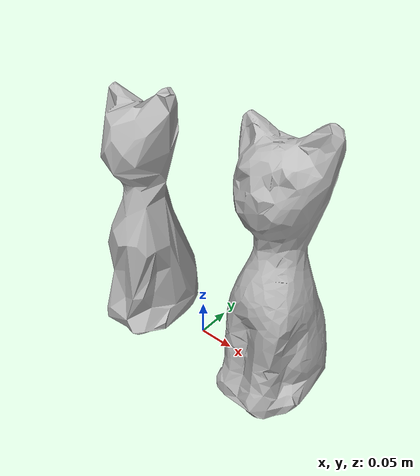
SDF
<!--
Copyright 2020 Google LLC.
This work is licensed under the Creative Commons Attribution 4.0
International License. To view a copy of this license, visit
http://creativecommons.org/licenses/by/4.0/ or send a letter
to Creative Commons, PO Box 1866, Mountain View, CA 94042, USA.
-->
<?xml version="1.0" ?>
<sdf version="1.6">
  <model name="Cat Figurines">
    <link name="link_0">
      <visual name="visual">
        <geometry>
          <mesh>
            <uri>meshes/model.obj</uri>
            <scale>3 3 3</scale>
          </mesh>
        </geometry>
      </visual>
      <collision name="collision_0">
        <geometry>
          <mesh>
            <uri>meshes/model.obj</uri>
            <scale>3 3 3</scale>
          </mesh>
        </geometry>
      </collision>
    </link>
  </model>
</sdf>
